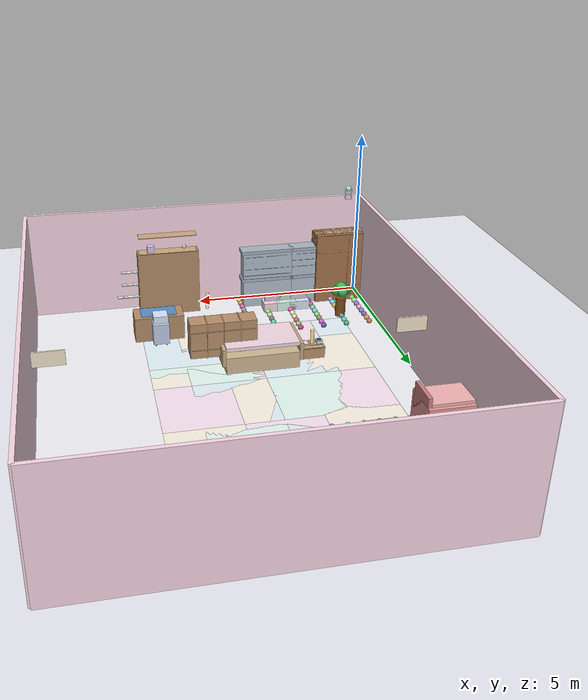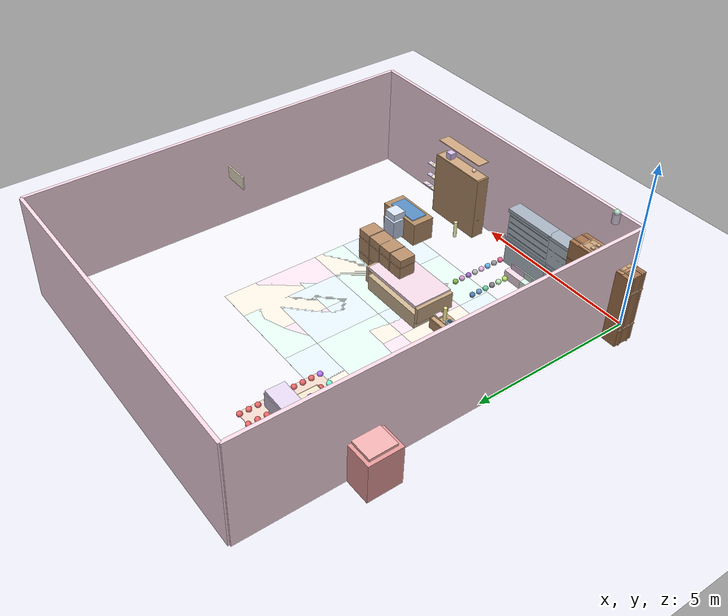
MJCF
<mujoco model="kids_room">
  <compiler angle="degree" inertiafromgeom="true"/>
  <option gravity="0 0 -9.81" integrator="RK4"/>
  <default>
    <default class="floor"><geom friction="1 0.005 0.0001" rgba="0.92 0.92 0.96 1"/></default>
    <default class="wall"><geom type="box" rgba="0.98 0.85 0.9 1"/></default>
    <default class="ceiling"><geom type="box" rgba="0.93 0.93 0.95 1"/></default>
    <default class="furniture"><geom friction="0.8 0.03 0.001" rgba="0.65 0.65 0.68 1"/></default>
    <default class="wood"><geom friction="0.8 0.03 0.001" rgba="0.95 0.9 0.8 1"/></default>
    <default class="metal"><geom friction="0.9 0.02 0.001" rgba="0.55 0.55 0.6 1"/></default>
    <default class="plastic"><geom friction="0.6 0.02 0.001" rgba="0.7 0.7 0.8 1"/></default>
    <default class="toy"><geom type="sphere" size="0.08" friction="0.6 0.01 0.001" rgba="0.9 0.4 0.4 1"/></default>
    <default class="lamp"><geom rgba="1 1 0.75 1"/></default>
    <default class="arm"><geom rgba="0.45 0.48 0.52 1" friction="0.9 0.02 0.001"/></default>
  </default>
  <worldbody>
    <light name="ambient_top" pos="4 5 3.1" dir="0 0 -1" diffuse="0.6 0.6 0.6" specular="0.2 0.2 0.2"/>
    <light name="north_soft" pos="4 1 3.0" dir="0 0 -1" diffuse="0.4 0.4 0.45" specular="0.15 0.15 0.15"/>
    <light name="south_soft" pos="4 9 3.0" dir="0 0 -1" diffuse="0.4 0.4 0.45" specular="0.15 0.15 0.15"/>
    <light name="ceiling_light" pos="4 5 3.5" dir="0 0 -1" diffuse="0.8 0.8 0.8" specular="0.5 0.5 0.5"/>
    <body name="room">
      <geom name="floor_plane" class="floor" type="plane" pos="0 0 0" size="40 40 0.1"/>
      <geom name="floor_visual" class="floor" type="box" pos="5 6 0" size="5 6 0.03" rgba="0.95 0.95 0.97 1"/>
      <!-- Decorative floor pattern -->
      <geom class="floor" type="box" pos="2 3 0.031" size="1 1 0.001" rgba="0.9 0.95 0.98 1"/>
      <geom class="floor" type="box" pos="3 3 0.031" size="1 1 0.001" rgba="0.98 0.9 0.95 1"/>
      <geom class="floor" type="box" pos="4 3 0.031" size="1 1 0.001" rgba="0.9 0.98 0.95 1"/>
      <geom class="floor" type="box" pos="5 3 0.031" size="1 1 0.001" rgba="0.98 0.95 0.9 1"/>
      <geom class="floor" type="box" pos="6 3 0.031" size="1 1 0.001" rgba="0.9 0.95 0.98 1"/>
      <geom class="floor" type="box" pos="2 4 0.031" size="1 1 0.001" rgba="0.98 0.95 0.9 1"/>
      <geom class="floor" type="box" pos="3 4 0.031" size="1 1 0.001" rgba="0.9 0.95 0.98 1"/>
      <geom class="floor" type="box" pos="4 4 0.031" size="1 1 0.001" rgba="0.98 0.9 0.95 1"/>
      <geom class="floor" type="box" pos="5 4 0.031" size="1 1 0.001" rgba="0.9 0.98 0.95 1"/>
      <geom class="floor" type="box" pos="6 4 0.031" size="1 1 0.001" rgba="0.98 0.95 0.9 1"/>
      <geom class="floor" type="box" pos="2 5 0.031" size="1 1 0.001" rgba="0.9 0.98 0.95 1"/>
      <geom class="floor" type="box" pos="3 5 0.031" size="1 1 0.001" rgba="0.98 0.95 0.9 1"/>
      <geom class="floor" type="box" pos="4 5 0.031" size="1 1 0.001" rgba="0.9 0.95 0.98 1"/>
      <geom class="floor" type="box" pos="5 5 0.031" size="1 1 0.001" rgba="0.98 0.9 0.95 1"/>
      <geom class="floor" type="box" pos="6 5 0.031" size="1 1 0.001" rgba="0.9 0.98 0.95 1"/>
      <geom class="floor" type="box" pos="2 6 0.031" size="1 1 0.001" rgba="0.98 0.9 0.95 1"/>
      <geom class="floor" type="box" pos="3 6 0.031" size="1 1 0.001" rgba="0.9 0.98 0.95 1"/>
      <geom class="floor" type="box" pos="4 6 0.031" size="1 1 0.001" rgba="0.98 0.95 0.9 1"/>
      <geom class="floor" type="box" pos="5 6 0.031" size="1 1 0.001" rgba="0.9 0.95 0.98 1"/>
      <geom class="floor" type="box" pos="6 6 0.031" size="1 1 0.001" rgba="0.98 0.9 0.95 1"/>
      <geom class="floor" type="box" pos="2 7 0.031" size="1 1 0.001" rgba="0.98 0.95 0.9 1"/>
      <geom class="floor" type="box" pos="3 7 0.031" size="1 1 0.001" rgba="0.9 0.95 0.98 1"/>
      <geom class="floor" type="box" pos="4 7 0.031" size="1 1 0.001" rgba="0.98 0.9 0.95 1"/>
      <geom class="floor" type="box" pos="5 7 0.031" size="1 1 0.001" rgba="0.9 0.98 0.95 1"/>
      <geom class="floor" type="box" pos="6 7 0.031" size="1 1 0.001" rgba="0.98 0.95 0.9 1"/>
      <geom name="north_wall" class="wall" pos="5 0 1.6" size="5 0.05 1.6" rgba="0.98 0.85 0.9 1"/>
      <geom name="south_wall" class="wall" pos="5 12 1.6" size="5 0.05 1.6" rgba="0.98 0.85 0.9 1"/>
      <geom name="west_wall" class="wall" pos="0 6 1.6" size="0.05 6 1.6" rgba="0.98 0.85 0.9 1"/>
      <geom name="east_wall" class="wall" pos="10 6 1.6" size="0.05 6 1.6" rgba="0.98 0.85 0.9 1"/>
      <!-- Windows -->
      <geom name="north_window" type="box" pos="5 0 2.0" size="1.5 0.02 0.8" rgba="0.3 0.6 0.9 0.6"/>
      <geom name="north_window_frame1" class="metal" type="box" pos="4.25 0 2.0" size="0.02 0.03 0.85"/>
      <geom name="north_window_frame2" class="metal" type="box" pos="5.75 0 2.0" size="0.02 0.03 0.85"/>
      <geom name="north_window_frame3" class="metal" type="box" pos="5 0 1.6" size="1.55 0.03 0.02"/>
      <geom name="north_window_frame4" class="metal" type="box" pos="5 0 2.4" size="1.55 0.03 0.02"/>
      <!-- Wall decorations -->
      <geom name="painting1" type="box" pos="3 0 2.2" size="0.6 0.01 0.4" rgba="0.9 0.7 0.5 1"/>
      <geom name="painting2" type="box" pos="7 0 2.2" size="0.6 0.01 0.4" rgba="0.5 0.7 0.9 1"/>
      <geom name="painting3" type="box" pos="3 12 2.2" size="0.6 0.01 0.4" rgba="0.7 0.9 0.5 1"/>
      <geom name="painting4" type="box" pos="7 12 2.2" size="0.6 0.01 0.4" rgba="0.9 0.5 0.9 1"/>
      <geom name="shelf1" class="wood" type="box" pos="3 12 1.8" size="0.4 0.02 0.2"/>
      <geom name="shelf2" class="wood" type="box" pos="7 12 1.8" size="0.4 0.02 0.2"/>
      <geom name="shelf3" class="wood" type="box" pos="0.5 6 1.8" size="0.4 0.02 0.2"/>
      <geom name="shelf4" class="wood" type="box" pos="9.5 6 1.8" size="0.4 0.02 0.2"/>
    </body>
    <body name="rest_area">
      <geom name="rest_rug" type="box" pos="4 4.5 0.01" size="2 2 0.01" rgba="0.85 0.92 0.98 1"/>
      <geom name="middle_rug" type="box" pos="5 6 0.015" size="2 1.5 0.005" rgba="0.92 0.85 0.98 1"/>
      <geom name="corner_rug" type="box" pos="8 8 0.015" size="1.5 1.5 0.005" rgba="0.85 0.98 0.92 1"/>
      <body name="bed" pos="4 4 0.25" euler="0 0 0">
        <geom class="wood" type="box" size="1 0.6 0.25" rgba="0.82 0.72 0.58 1"/>
        <geom class="wood" type="box" size="0.05 0.6 0.25" pos="1.05 0 0.25" rgba="0.78 0.66 0.52 1"/>
        <geom class="wood" type="box" size="0.05 0.6 0.25" pos="-1.05 0 0.25" rgba="0.78 0.66 0.52 1"/>
        <geom type="box" size="1 0.6 0.05" pos="0 0 0.5" rgba="0.95 0.85 0.9 1"/>
      </body>
      <body name="bedside_cabinet" pos="2.5 4 0.2">
        <geom class="wood" type="box" size="0.3 0.25 0.15" rgba="0.72 0.56 0.42 1"/>
        <!-- Drawers -->
        <geom class="wood" type="box" size="0.28 0.23 0.01" pos="0 0 0.16" rgba="0.8 0.65 0.5 1"/>
        <geom class="wood" type="box" size="0.28 0.1 0.05" pos="0 0 0.07" rgba="0.78 0.63 0.48 1"/>
        <geom class="wood" type="box" size="0.28 0.1 0.05" pos="0 0 0.14" rgba="0.78 0.63 0.48 1"/>
        <geom class="wood" type="box" size="0.28 0.01 0.05" pos="0 0 0.11" rgba="0.85 0.7 0.55 1"/>
        <!-- Drawer handles -->
        <geom class="metal" type="box" size="0.02 0.02 0.01" pos="0.1 0 0.07" rgba="0.6 0.6 0.65 1"/>
        <geom class="metal" type="box" size="0.02 0.02 0.01" pos="0.1 0 0.14" rgba="0.6 0.6 0.65 1"/>
      </body>
      <body name="bed_lamp" pos="2.5 4 0.6">
        <geom class="lamp" type="cylinder" size="0.05 0.2" rgba="1 0.95 0.6 1"/>
      </body>
      <!-- Add small items on bedside cabinet -->
      <body name="alarm_clock" pos="2.3 4 0.4">
        <geom class="plastic" type="box" size="0.08 0.08 0.08" rgba="0.7 0.9 0.95 1"/>
        <geom class="plastic" type="box" size="0.05 0.05 0.01" pos="0 0 0.085" rgba="0.2 0.3 0.4 1"/>
      </body>
      <body name="photo_frame" pos="2.7 4 0.4">
        <geom class="wood" type="box" size="0.1 0.12 0.02" rgba="0.9 0.85 0.7 1"/>
        <geom type="box" size="0.08 0.1 0.01" pos="0 0 0.025" rgba="0.95 0.85 0.9 1"/>
      </body>
      <body name="small_wardrobe" pos="5 4 0.9" euler="0 0 90">
        <geom class="wood" type="box" size="0.25 0.9 0.5" rgba="0.72 0.56 0.42 1"/>
        <!-- Door frames -->
        <geom class="wood" type="box" size="0.26 0.01 0.52" pos="0 0.45 0" rgba="0.85 0.7 0.55 1"/>
        <geom class="wood" type="box" size="0.26 0.01 0.52" pos="0 -0.45 0" rgba="0.85 0.7 0.55 1"/>
        <geom class="wood" type="box" size="0.26 0.9 0.01" pos="0 0 -0.26" rgba="0.85 0.7 0.55 1"/>
        <geom class="wood" type="box" size="0.26 0.9 0.01" pos="0 0 0.26" rgba="0.85 0.7 0.55 1"/>
        <!-- Middle divider -->
        <geom class="wood" type="box" size="0.26 0.01 0.5" pos="0 0 0" rgba="0.85 0.7 0.55 1"/>
        <!-- Doors -->
        <geom class="wood" type="box" size="0.24 0.43 0.23" pos="0 0.22 0" rgba="0.78 0.63 0.48 1"/>
        <geom class="wood" type="box" size="0.24 0.43 0.23" pos="0 -0.22 0" rgba="0.78 0.63 0.48 1"/>
        <!-- Door handles -->
        <geom class="metal" type="box" size="0.02 0.02 0.01" pos="0.12 0.22 0" rgba="0.6 0.6 0.65 1"/>
        <geom class="metal" type="box" size="0.02 0.02 0.01" pos="0.12 -0.22 0" rgba="0.6 0.6 0.65 1"/>
        <!-- Internal shelves -->
        <geom class="wood" type="box" size="0.24 0.01 0.23" pos="0 0.22 0.12" rgba="0.8 0.65 0.5 1"/>
        <geom class="wood" type="box" size="0.24 0.01 0.23" pos="0 -0.22 0.12" rgba="0.8 0.65 0.5 1"/>
      </body>
    </body>
    <body name="storage_area">
      <geom name="storage_floor" type="box" pos="2 1.5 0.01" size="2 1.5 0.01" rgba="0.96 0.94 0.9 1"/>
      <body name="large_wardrobe" pos="0.5 0.5 1.1">
        <geom class="wood" type="box" size="1 0.3 1.1" rgba="0.65 0.45 0.3 1"/>
        <!-- Door frames -->
        <geom class="wood" type="box" size="1.02 0.02 1.12" pos="0 0.15 0" rgba="0.8 0.65 0.5 1"/>
        <geom class="wood" type="box" size="1.02 0.02 1.12" pos="0 -0.15 0" rgba="0.8 0.65 0.5 1"/>
        <geom class="wood" type="box" size="1.02 0.3 0.02" pos="0 0 -0.57" rgba="0.8 0.65 0.5 1"/>
        <geom class="wood" type="box" size="1.02 0.3 0.02" pos="0 0 0.57" rgba="0.8 0.65 0.5 1"/>
        <!-- Middle divider -->
        <geom class="wood" type="box" size="0.02 0.3 1.1" pos="0 0 0" rgba="0.8 0.65 0.5 1"/>
        <!-- Doors -->
        <geom class="wood" type="box" size="0.48 0.28 0.01" pos="-0.25 0 1.1" rgba="0.75 0.55 0.4 1"/>
        <geom class="wood" type="box" size="0.48 0.28 0.01" pos="0.25 0 1.1" rgba="0.75 0.55 0.4 1"/>
        <!-- Door panels -->
        <geom class="wood" type="box" size="0.4 0.12 0.01" pos="-0.25 0.08 1.11" rgba="0.78 0.63 0.48 1"/>
        <geom class="wood" type="box" size="0.4 0.12 0.01" pos="-0.25 -0.08 1.11" rgba="0.78 0.63 0.48 1"/>
        <geom class="wood" type="box" size="0.4 0.12 0.01" pos="0.25 0.08 1.11" rgba="0.78 0.63 0.48 1"/>
        <geom class="wood" type="box" size="0.4 0.12 0.01" pos="0.25 -0.08 1.11" rgba="0.78 0.63 0.48 1"/>
        <!-- Enhanced door handles -->
        <geom class="metal" type="box" size="0.03 0.03 0.08" pos="-0.2 0.0 1.0" rgba="0.7 0.7 0.75 1"/>
        <geom class="metal" type="cylinder" size="0.015 0.1" pos="-0.2 0.0 1.05" rgba="0.7 0.7 0.75 1"/>
        <geom class="metal" type="box" size="0.03 0.03 0.08" pos="0.2 0.0 1.0" rgba="0.7 0.7 0.75 1"/>
        <geom class="metal" type="cylinder" size="0.015 0.1" pos="0.2 0.0 1.05" rgba="0.7 0.7 0.75 1"/>
        <!-- Internal shelves -->
        <geom class="wood" type="box" size="0.96 0.01 0.5" pos="0 0.1 0.25" rgba="0.75 0.6 0.45 1"/>
        <geom class="wood" type="box" size="0.96 0.01 0.5" pos="0 -0.1 0.25" rgba="0.75 0.6 0.45 1"/>
        <geom class="wood" type="box" size="0.96 0.01 0.5" pos="0 0.1 -0.25" rgba="0.75 0.6 0.45 1"/>
        <geom class="wood" type="box" size="0.96 0.01 0.5" pos="0 -0.1 -0.25" rgba="0.75 0.6 0.45 1"/>
        <!-- Decorative trim -->
        <geom class="wood" type="box" size="0.05 0.05 0.05" pos="-0.4 0.1 1.11" rgba="0.85 0.7 0.55 1"/>
        <geom class="wood" type="box" size="0.05 0.05 0.05" pos="-0.4 -0.1 1.11" rgba="0.85 0.7 0.55 1"/>
        <geom class="wood" type="box" size="0.05 0.05 0.05" pos="0.4 0.1 1.11" rgba="0.85 0.7 0.55 1"/>
        <geom class="wood" type="box" size="0.05 0.05 0.05" pos="0.4 -0.1 1.11" rgba="0.85 0.7 0.55 1"/>
        <!-- Add a decorative vase on top of wardrobe -->
        <body name="decorative_vase" pos="0 0 2.3">
          <geom class="plastic" type="cylinder" size="0.1 0.15" rgba="0.9 0.85 0.95 0.8"/>
          <geom type="sphere" size="0.08" pos="0 0 0.15" rgba="0.7 0.9 0.8 1"/>
        </body>
      </body>
      <body name="toy_rack_1" pos="1.5 0.5 0.9">
        <geom class="metal" type="box" size="0.75 0.2 0.9" rgba="0.7 0.75 0.8 1"/>
        <!-- Enhanced frame -->
        <geom class="metal" type="box" size="0.8 0.22 0.05" pos="0 0 0" rgba="0.65 0.7 0.75 1"/>
        <geom class="metal" type="box" size="0.8 0.22 0.05" pos="0 0 0.9" rgba="0.65 0.7 0.75 1"/>
        <!-- Additional shelves -->
        <geom class="plastic" type="box" size="0.7 0.18 0.15" pos="0 0 0.15" rgba="0.8 0.9 0.8 0.8"/>
        <geom class="plastic" type="box" size="0.7 0.18 0.15" pos="0 0 0.35" rgba="0.9 0.8 0.8 0.8"/>
        <geom class="plastic" type="box" size="0.7 0.18 0.15" pos="0 0 0.55" rgba="0.8 0.8 0.9 0.8"/>
        <geom class="plastic" type="box" size="0.7 0.18 0.15" pos="0 0 0.75" rgba="0.9 0.9 0.8 0.8"/>
        <!-- Decorative edges -->
        <geom class="metal" type="box" size="0.72 0.2 0.01" pos="0 0 0.15" rgba="0.6 0.65 0.7 1"/>
        <geom class="metal" type="box" size="0.72 0.2 0.01" pos="0 0 0.35" rgba="0.6 0.65 0.7 1"/>
        <geom class="metal" type="box" size="0.72 0.2 0.01" pos="0 0 0.55" rgba="0.6 0.65 0.7 1"/>
        <geom class="metal" type="box" size="0.72 0.2 0.01" pos="0 0 0.75" rgba="0.6 0.65 0.7 1"/>
        <!-- Decorative corner caps -->
        <geom class="plastic" type="sphere" size="0.03" pos="-0.38 0.11 0" rgba="0.9 0.4 0.4 1"/>
        <geom class="plastic" type="sphere" size="0.03" pos="0.38 0.11 0" rgba="0.9 0.4 0.4 1"/>
        <geom class="plastic" type="sphere" size="0.03" pos="-0.38 -0.11 0" rgba="0.9 0.4 0.4 1"/>
        <geom class="plastic" type="sphere" size="0.03" pos="0.38 -0.11 0" rgba="0.9 0.4 0.4 1"/>
      </body>
      <body name="toy_rack_2" pos="3.0 0.5 0.9">
        <geom class="metal" type="box" size="0.75 0.2 0.9" rgba="0.7 0.75 0.8 1"/>
        <!-- Enhanced frame -->
        <geom class="metal" type="box" size="0.8 0.22 0.05" pos="0 0 0" rgba="0.65 0.7 0.75 1"/>
        <geom class="metal" type="box" size="0.8 0.22 0.05" pos="0 0 0.9" rgba="0.65 0.7 0.75 1"/>
        <!-- Additional shelves -->
        <geom class="plastic" type="box" size="0.7 0.18 0.15" pos="0 0 0.15" rgba="0.8 0.8 0.9 0.8"/>
        <geom class="plastic" type="box" size="0.7 0.18 0.15" pos="0 0 0.35" rgba="0.9 0.9 0.8 0.8"/>
        <geom class="plastic" type="box" size="0.7 0.18 0.15" pos="0 0 0.55" rgba="0.9 0.8 0.9 0.8"/>
        <geom class="plastic" type="box" size="0.7 0.18 0.15" pos="0 0 0.75" rgba="0.8 0.9 0.9 0.8"/>
        <!-- Decorative edges -->
        <geom class="metal" type="box" size="0.72 0.2 0.01" pos="0 0 0.15" rgba="0.6 0.65 0.7 1"/>
        <geom class="metal" type="box" size="0.72 0.2 0.01" pos="0 0 0.35" rgba="0.6 0.65 0.7 1"/>
        <geom class="metal" type="box" size="0.72 0.2 0.01" pos="0 0 0.55" rgba="0.6 0.65 0.7 1"/>
        <geom class="metal" type="box" size="0.72 0.2 0.01" pos="0 0 0.75" rgba="0.6 0.65 0.7 1"/>
        <!-- Decorative corner caps -->
        <geom class="plastic" type="sphere" size="0.03" pos="-0.38 0.11 0" rgba="0.4 0.9 0.4 1"/>
        <geom class="plastic" type="sphere" size="0.03" pos="0.38 0.11 0" rgba="0.4 0.9 0.4 1"/>
        <geom class="plastic" type="sphere" size="0.03" pos="-0.38 -0.11 0" rgba="0.4 0.9 0.4 1"/>
        <geom class="plastic" type="sphere" size="0.03" pos="0.38 -0.11 0" rgba="0.4 0.9 0.4 1"/>
      </body>
      <body name="storage_box_1" pos="2.1 1.0 0.15">
        <geom class="plastic" type="box" size="0.3 0.2 0.15" rgba="0.85 0.9 0.95 1"/>
        <geom type="box" size="0.25 0.01 0.16" pos="0 0 0.16" rgba="0.75 0.8 0.85 1"/>
      </body>
      <body name="storage_box_2" pos="2.5 1.0 0.15">
        <geom class="plastic" type="box" size="0.3 0.2 0.15" rgba="0.85 0.95 0.9 1"/>
        <geom type="box" size="0.25 0.01 0.16" pos="0 0 0.16" rgba="0.75 0.85 0.8 1"/>
      </body>
      <body name="storage_box_3" pos="2.9 1.0 0.15">
        <geom class="plastic" type="box" size="0.3 0.2 0.15" rgba="0.95 0.85 0.9 1"/>
        <geom type="box" size="0.25 0.01 0.16" pos="0 0 0.16" rgba="0.85 0.75 0.85 1"/>
      </body>
      <!-- Add a small plant -->
      <body name="plant" pos="1 1.8 0.3">
        <geom class="plastic" type="cylinder" size="0.15 0.3" rgba="0.5 0.3 0.1 1"/>
        <geom type="sphere" size="0.2" pos="0 0 0.6" rgba="0.2 0.7 0.3 1"/>
        <geom type="sphere" size="0.15" pos="0.15 0 0.55" rgba="0.2 0.7 0.3 1"/>
        <geom type="sphere" size="0.15" pos="-0.15 0 0.55" rgba="0.2 0.7 0.3 1"/>
        <geom type="sphere" size="0.15" pos="0 0.15 0.55" rgba="0.2 0.7 0.3 1"/>
      </body>
      <body name="storage_toys">
        <geom class="toy" name="st_toy_01" pos="0.3 0.3 0.08" rgba="0.95 0.45 0.45 1"/>
        <geom class="toy" name="st_toy_02" pos="1.0 0.3 0.08" rgba="0.95 0.7 0.45 1"/>
        <geom class="toy" name="st_toy_03" pos="1.7 0.3 0.08" rgba="0.45 0.6 0.95 1"/>
        <geom class="toy" name="st_toy_04" pos="2.4 0.3 0.08" rgba="0.45 0.9 0.6 1"/>
        <geom class="toy" name="st_toy_05" pos="3.1 0.3 0.08" rgba="0.85 0.45 0.95 1"/>
        <geom class="toy" name="st_toy_06" pos="3.8 0.3 0.08" rgba="0.95 0.85 0.45 1"/>
        <geom class="toy" name="st_toy_07" pos="0.3 0.54 0.08" rgba="0.4 0.9 0.4 1"/>
        <geom class="toy" name="st_toy_08" pos="1.0 0.54 0.08" rgba="0.4 0.4 0.9 1"/>
        <geom class="toy" name="st_toy_09" pos="1.7 0.54 0.08" rgba="0.9 0.9 0.4 1"/>
        <geom class="toy" name="st_toy_10" pos="2.4 0.54 0.08" rgba="0.9 0.4 0.9 1"/>
        <geom class="toy" name="st_toy_11" pos="3.1 0.54 0.08" rgba="0.4 0.9 0.9 1"/>
        <geom class="toy" name="st_toy_12" pos="3.8 0.54 0.08" rgba="0.9 0.6 0.4 1"/>
        <geom class="toy" name="st_toy_13" pos="0.3 0.78 0.08" rgba="0.6 0.9 0.4 1"/>
        <geom class="toy" name="st_toy_14" pos="1.0 0.78 0.08" rgba="0.9 0.6 0.9 1"/>
        <geom class="toy" name="st_toy_15" pos="1.7 0.78 0.08" rgba="0.6 0.4 0.9 1"/>
        <geom class="toy" name="st_toy_16" pos="2.4 0.78 0.08" rgba="0.9 0.9 0.6 1"/>
        <geom class="toy" name="st_toy_17" pos="3.1 0.78 0.08" rgba="0.4 0.6 0.9 1"/>
        <geom class="toy" name="st_toy_18" pos="3.8 0.78 0.08" rgba="0.9 0.4 0.6 1"/>
        <geom class="toy" name="st_toy_19" pos="0.3 1.02 0.08" rgba="0.6 0.9 0.6 1"/>
        <geom class="toy" name="st_toy_20" pos="1.0 1.02 0.08" rgba="0.4 0.9 0.9 1"/>
        <geom class="toy" name="st_toy_21" pos="1.7 1.02 0.08" rgba="0.9 0.4 0.4 1"/>
        <geom class="toy" name="st_toy_22" pos="2.4 1.02 0.08" rgba="0.4 0.4 0.4 1"/>
        <geom class="toy" name="st_toy_23" pos="3.1 1.02 0.08" rgba="0.9 0.9 0.9 1"/>
        <geom class="toy" name="st_toy_24" pos="3.8 1.02 0.08" rgba="0.6 0.6 0.6 1"/>
        <geom class="toy" name="st_toy_25" pos="0.3 1.26 0.08" rgba="0.7 0.4 0.9 1"/>
        <geom class="toy" name="st_toy_26" pos="1.0 1.26 0.08" rgba="0.9 0.7 0.4 1"/>
        <geom class="toy" name="st_toy_27" pos="1.7 1.26 0.08" rgba="0.4 0.9 0.7 1"/>
        <geom class="toy" name="st_toy_28" pos="2.4 1.26 0.08" rgba="0.9 0.4 0.7 1"/>
        <geom class="toy" name="st_toy_29" pos="3.1 1.26 0.08" rgba="0.7 0.9 0.4 1"/>
        <geom class="toy" name="st_toy_30" pos="3.8 1.26 0.08" rgba="0.4 0.7 0.9 1"/>
        <geom class="toy" name="st_toy_31" pos="0.3 1.5 0.08" rgba="0.9 0.7 0.7 1"/>
        <geom class="toy" name="st_toy_32" pos="1.0 1.5 0.08" rgba="0.7 0.9 0.9 1"/>
        <geom class="toy" name="st_toy_33" pos="1.7 1.5 0.08" rgba="0.7 0.7 0.9 1"/>
        <geom class="toy" name="st_toy_34" pos="2.4 1.5 0.08" rgba="0.9 0.9 0.7 1"/>
        <geom class="toy" name="st_toy_35" pos="3.1 1.5 0.08" rgba="0.7 0.9 0.7 1"/>
        <geom class="toy" name="st_toy_36" pos="3.8 1.5 0.08" rgba="0.9 0.7 0.9 1"/>
        <geom class="toy" name="st_toy_37" pos="0.3 1.74 0.08" rgba="0.5 0.5 0.9 1"/>
        <geom class="toy" name="st_toy_38" pos="1.0 1.74 0.08" rgba="0.9 0.5 0.5 1"/>
        <geom class="toy" name="st_toy_39" pos="1.7 1.74 0.08" rgba="0.5 0.9 0.5 1"/>
        <geom class="toy" name="st_toy_40" pos="2.4 1.74 0.08" rgba="0.9 0.9 0.5 1"/>
        <geom class="toy" name="st_toy_41" pos="3.1 1.74 0.08" rgba="0.5 0.5 0.5 1"/>
        <geom class="toy" name="st_toy_42" pos="3.8 1.74 0.08" rgba="0.7 0.7 0.7 1"/>
        <geom class="toy" name="st_toy_43" pos="0.3 1.98 0.08" rgba="0.6 0.4 0.6 1"/>
        <geom class="toy" name="st_toy_44" pos="1.0 1.98 0.08" rgba="0.4 0.6 0.6 1"/>
        <geom class="toy" name="st_toy_45" pos="1.7 1.98 0.08" rgba="0.6 0.6 0.4 1"/>
        <geom class="toy" name="st_toy_46" pos="2.4 1.98 0.08" rgba="0.8 0.4 0.6 1"/>
        <geom class="toy" name="st_toy_47" pos="3.1 1.98 0.08" rgba="0.4 0.8 0.6 1"/>
        <geom class="toy" name="st_toy_48" pos="3.8 1.98 0.08" rgba="0.6 0.4 0.8 1"/>
        <geom class="toy" name="st_toy_49" pos="0.3 2.22 0.08" rgba="0.8 0.6 0.4 1"/>
        <geom class="toy" name="st_toy_50" pos="1.0 2.22 0.08" rgba="0.4 0.8 0.8 1"/>
        <geom class="toy" name="st_toy_51" pos="1.7 2.22 0.08" rgba="0.8 0.4 0.8 1"/>
        <geom class="toy" name="st_toy_52" pos="2.4 2.22 0.08" rgba="0.6 0.8 0.4 1"/>
        <geom class="toy" name="st_toy_53" pos="3.1 2.22 0.08" rgba="0.4 0.6 0.8 1"/>
        <geom class="toy" name="st_toy_54" pos="3.8 2.22 0.08" rgba="0.8 0.6 0.8 1"/>
        <geom class="toy" name="st_toy_55" pos="0.3 2.46 0.08" rgba="0.7 0.5 0.3 1"/>
        <geom class="toy" name="st_toy_56" pos="1.0 2.46 0.08" rgba="0.3 0.7 0.5 1"/>
        <geom class="toy" name="st_toy_57" pos="1.7 2.46 0.08" rgba="0.5 0.3 0.7 1"/>
        <geom class="toy" name="st_toy_58" pos="2.4 2.46 0.08" rgba="0.7 0.3 0.5 1"/>
        <geom class="toy" name="st_toy_59" pos="3.1 2.46 0.08" rgba="0.3 0.5 0.7 1"/>
        <geom class="toy" name="st_toy_60" pos="3.8 2.46 0.08" rgba="0.5 0.7 0.3 1"/>
      </body>
    </body>
    <body name="study_area">
      <geom name="study_floor" type="box" pos="6 2 0.01" size="2 2 0.01" rgba="0.9 0.96 0.9 1"/>
      <body name="desk" pos="6.5 2 0.375" euler="0 0 0">
        <geom class="wood" type="box" size="0.7 0.35 0.375" rgba="0.7 0.55 0.4 1"/>
        <geom class="plastic" type="box" size="0.5 0.25 0.02" pos="0 0 0.395" rgba="0.3 0.6 0.9 0.8"/>
        <geom class="plastic" type="cylinder" size="0.03 0.1" pos="-0.3 0 -0.375" rgba="0.5 0.5 0.5 1"/>
        <geom class="plastic" type="cylinder" size="0.03 0.1" pos="0.3 0 -0.375" rgba="0.5 0.5 0.5 1"/>
      </body>
      <body name="chair" pos="6.5 2.5 0.4">
        <geom class="plastic" type="box" size="0.225 0.225 0.3" rgba="0.75 0.8 0.9 1"/>
        <geom class="plastic" type="box" size="0.2 0.2 0.1" pos="0 0 0.45" rgba="0.85 0.9 1 1"/>
        <geom class="plastic" type="cylinder" size="0.02 0.05" pos="0.15 0.15 -0.35" rgba="0.5 0.5 0.5 1"/>
        <geom class="plastic" type="cylinder" size="0.02 0.05" pos="-0.15 0.15 -0.35" rgba="0.5 0.5 0.5 1"/>
        <geom class="plastic" type="cylinder" size="0.02 0.05" pos="0.15 -0.15 -0.35" rgba="0.5 0.5 0.5 1"/>
        <geom class="plastic" type="cylinder" size="0.02 0.05" pos="-0.15 -0.15 -0.35" rgba="0.5 0.5 0.5 1"/>
      </body>
      <body name="bookshelf" pos="6 0.5 1.0">
        <geom class="wood" type="box" size="0.9 0.2 1.0" rgba="0.7 0.55 0.4 1"/>
        <!-- Bookshelf shelves -->
        <geom class="wood" type="box" size="0.85 0.18 0.01" pos="0 0 0.5" rgba="0.8 0.65 0.5 1"/>
        <geom class="wood" type="box" size="0.85 0.18 0.01" pos="0 0 1.0" rgba="0.8 0.65 0.5 1"/>
        <geom class="wood" type="box" size="0.85 0.18 0.01" pos="0 0 1.5" rgba="0.8 0.65 0.5 1"/>
      </body>
      <body name="bookshelf_books">
        <geom class="plastic" type="box" size="0.1 0.075 0.01" pos="5.2 0.5 0.6" rgba="0.9 0.8 0.7 1"/>
        <geom class="plastic" type="box" size="0.1 0.075 0.01" pos="5.35 0.5 0.6" rgba="0.85 0.9 0.75 1"/>
        <geom class="plastic" type="box" size="0.1 0.075 0.01" pos="5.5 0.5 0.6" rgba="0.8 0.85 0.95 1"/>
        <geom class="plastic" type="box" size="0.1 0.075 0.01" pos="5.65 0.5 0.6" rgba="0.95 0.85 0.8 1"/>
        <geom class="plastic" type="box" size="0.1 0.075 0.01" pos="5.8 0.5 0.6" rgba="0.75 0.9 0.85 1"/>
        <geom class="plastic" type="box" size="0.1 0.075 0.01" pos="5.95 0.5 0.6" rgba="0.9 0.75 0.85 1"/>
        <geom class="plastic" type="box" size="0.1 0.075 0.01" pos="6.1 0.5 0.6" rgba="0.85 0.8 0.95 1"/>
        <geom class="plastic" type="box" size="0.1 0.075 0.01" pos="6.25 0.5 0.6" rgba="0.9 0.85 0.75 1"/>
        <geom class="plastic" type="box" size="0.1 0.075 0.01" pos="6.4 0.5 0.6" rgba="0.8 0.95 0.85 1"/>
        <geom class="plastic" type="box" size="0.1 0.075 0.01" pos="6.55 0.5 0.6" rgba="0.75 0.85 0.95 1"/>
        <geom class="plastic" type="box" size="0.1 0.075 0.01" pos="6.7 0.5 0.6" rgba="0.95 0.8 0.85 1"/>
        <geom class="plastic" type="box" size="0.1 0.075 0.01" pos="6.85 0.5 0.6" rgba="0.85 0.95 0.8 1"/>
        <geom class="plastic" type="box" size="0.1 0.075 0.01" pos="7.0 0.5 0.6" rgba="0.8 0.9 0.95 1"/>
        <geom class="plastic" type="box" size="0.1 0.075 0.01" pos="7.15 0.5 0.6" rgba="0.95 0.9 0.8 1"/>
        <geom class="plastic" type="box" size="0.1 0.075 0.01" pos="7.3 0.5 0.6" rgba="0.85 0.8 0.9 1"/>
        <geom class="plastic" type="box" size="0.1 0.075 0.01" pos="7.45 0.5 0.6" rgba="0.9 0.85 0.9 1"/>
        <geom class="plastic" type="box" size="0.1 0.075 0.01" pos="5.2 0.5 1.0" rgba="0.9 0.8 0.7 1"/>
        <geom class="plastic" type="box" size="0.1 0.075 0.01" pos="5.35 0.5 1.0" rgba="0.85 0.9 0.75 1"/>
        <geom class="plastic" type="box" size="0.1 0.075 0.01" pos="5.5 0.5 1.0" rgba="0.8 0.85 0.95 1"/>
        <geom class="plastic" type="box" size="0.1 0.075 0.01" pos="5.65 0.5 1.0" rgba="0.95 0.85 0.8 1"/>
        <geom class="plastic" type="box" size="0.1 0.075 0.01" pos="5.8 0.5 1.0" rgba="0.75 0.9 0.85 1"/>
        <geom class="plastic" type="box" size="0.1 0.075 0.01" pos="5.95 0.5 1.0" rgba="0.9 0.75 0.85 1"/>
        <geom class="plastic" type="box" size="0.1 0.075 0.01" pos="6.1 0.5 1.0" rgba="0.85 0.8 0.95 1"/>
        <geom class="plastic" type="box" size="0.1 0.075 0.01" pos="6.25 0.5 1.0" rgba="0.9 0.85 0.75 1"/>
        <geom class="plastic" type="box" size="0.1 0.075 0.01" pos="6.4 0.5 1.0" rgba="0.8 0.95 0.85 1"/>
        <geom class="plastic" type="box" size="0.1 0.075 0.01" pos="6.55 0.5 1.0" rgba="0.75 0.85 0.95 1"/>
        <geom class="plastic" type="box" size="0.1 0.075 0.01" pos="6.7 0.5 1.0" rgba="0.95 0.8 0.85 1"/>
        <geom class="plastic" type="box" size="0.1 0.075 0.01" pos="6.85 0.5 1.0" rgba="0.85 0.95 0.8 1"/>
        <geom class="plastic" type="box" size="0.1 0.075 0.01" pos="7.0 0.5 1.0" rgba="0.8 0.9 0.95 1"/>
        <geom class="plastic" type="box" size="0.1 0.075 0.01" pos="7.15 0.5 1.0" rgba="0.95 0.9 0.8 1"/>
        <geom class="plastic" type="box" size="0.1 0.075 0.01" pos="7.3 0.5 1.0" rgba="0.85 0.8 0.9 1"/>
        <geom class="plastic" type="box" size="0.1 0.075 0.01" pos="5.2 0.5 1.4" rgba="0.9 0.8 0.7 1"/>
        <geom class="plastic" type="box" size="0.1 0.075 0.01" pos="5.35 0.5 1.4" rgba="0.85 0.9 0.75 1"/>
        <geom class="plastic" type="box" size="0.1 0.075 0.01" pos="5.5 0.5 1.4" rgba="0.8 0.85 0.95 1"/>
        <geom class="plastic" type="box" size="0.1 0.075 0.01" pos="5.65 0.5 1.4" rgba="0.95 0.85 0.8 1"/>
        <geom class="plastic" type="box" size="0.1 0.075 0.01" pos="5.8 0.5 1.4" rgba="0.75 0.9 0.85 1"/>
        <geom class="plastic" type="box" size="0.1 0.075 0.01" pos="5.95 0.5 1.4" rgba="0.9 0.75 0.85 1"/>
        <geom class="plastic" type="box" size="0.1 0.075 0.01" pos="6.1 0.5 1.4" rgba="0.85 0.8 0.95 1"/>
        <geom class="plastic" type="box" size="0.1 0.075 0.01" pos="6.25 0.5 1.4" rgba="0.9 0.85 0.75 1"/>
        <geom class="plastic" type="box" size="0.1 0.075 0.01" pos="6.4 0.5 1.4" rgba="0.8 0.95 0.85 1"/>
        <geom class="plastic" type="box" size="0.1 0.075 0.01" pos="6.55 0.5 1.4" rgba="0.75 0.85 0.95 1"/>
        <geom class="plastic" type="box" size="0.1 0.075 0.01" pos="6.7 0.5 1.4" rgba="0.95 0.8 0.85 1"/>
        <geom class="plastic" type="box" size="0.1 0.075 0.01" pos="6.85 0.5 1.4" rgba="0.85 0.95 0.8 1"/>
        <geom class="plastic" type="box" size="0.1 0.075 0.01" pos="7.0 0.5 1.4" rgba="0.8 0.9 0.95 1"/>
        <geom class="plastic" type="box" size="0.1 0.075 0.01" pos="7.15 0.5 1.4" rgba="0.95 0.9 0.8 1"/>
        <geom class="plastic" type="box" size="0.1 0.075 0.01" pos="7.3 0.5 1.4" rgba="0.85 0.8 0.9 1"/>
      </body>
      <body name="desk_lamp" pos="5 1.5 0.75">
        <geom class="lamp" type="cylinder" size="0.05 0.25"/>
      </body>
      <!-- Add decorative items on bookshelf -->
      <body name="bookshelf_decor1" pos="6.5 0.5 2.1">
        <geom class="plastic" type="box" size="0.1 0.1 0.1" rgba="0.85 0.75 0.95 1"/>
      </body>
      <body name="bookshelf_decor2" pos="5.5 0.5 2.1">
        <geom class="plastic" type="sphere" size="0.06" rgba="0.9 0.8 0.7 1"/>
      </body>
    </body>
    <body name="play_area">
      <geom name="play_floor" type="box" pos="1.6 8.75 0.01" size="1.6 1.25 0.01" rgba="0.98 0.93 0.9 1"/>
      <body name="play_mat" pos="1.6 8.75 0.025">
        <geom type="box" size="1.5 1.2 0.025" rgba="0.95 0.85 0.8 1"/>
      </body>
      <body name="slide_base" pos="0.2 8.5 0.6">
        <geom class="plastic" type="box" size="1 0.5 0.6" rgba="0.9 0.6 0.6 1"/>
        <geom class="plastic" type="box" size="0.9 0.4 0.05" pos="0 0 0.625" rgba="0.95 0.7 0.7 1"/>
        <geom class="plastic" type="box" size="0.05 0.4 0.55" pos="0.95 0 0.3" rgba="0.8 0.5 0.5 1"/>
      </body>
      <body name="blocks_table" pos="2 8.5 0.25">
        <geom class="wood" type="box" size="0.4 0.4 0.25" rgba="0.7 0.55 0.4 1"/>
        <geom class="plastic" type="box" size="0.35 0.35 0.02" pos="0 0 0.27" rgba="0.95 0.9 0.8 1"/>
        <!-- Add some blocks -->
        <geom class="plastic" type="box" size="0.06 0.06 0.06" pos="-0.1 0 0.3" rgba="0.9 0.4 0.4 1"/>
        <geom class="plastic" type="box" size="0.06 0.06 0.06" pos="0 0 0.3" rgba="0.4 0.9 0.4 1"/>
        <geom class="plastic" type="box" size="0.06 0.06 0.06" pos="0.1 0 0.3" rgba="0.4 0.4 0.9 1"/>
        <geom class="plastic" type="box" size="0.06 0.06 0.06" pos="0 0 0.36" rgba="0.9 0.9 0.4 1"/>
      </body>
      <body name="kids_sofa" pos="2.5 9 0.25">
        <geom class="plastic" type="box" size="0.4 0.3 0.25" rgba="0.8 0.75 0.85 1"/>
        <geom class="plastic" type="box" size="0.38 0.28 0.05" pos="0 0 0.275" rgba="0.9 0.85 0.95 1"/>
      </body>
      <body name="play_toys">
        <geom class="toy" name="pl_toy_01" pos="0.2 7.6 0.08" rgba="0.95 0.45 0.45 1"/>
        <geom class="toy" name="pl_toy_02" pos="0.6 7.6 0.08" rgba="0.45 0.6 0.95 1"/>
        <geom class="toy" name="pl_toy_03" pos="1.0 7.6 0.08" rgba="0.95 0.7 0.45 1"/>
        <geom class="toy" name="pl_toy_04" pos="1.4 7.6 0.08" rgba="0.45 0.9 0.6 1"/>
        <geom class="toy" name="pl_toy_05" pos="1.8 7.6 0.08" rgba="0.85 0.45 0.95 1"/>
        <geom class="toy" name="pl_toy_06" pos="2.2 7.6 0.08" rgba="0.95 0.85 0.45 1"/>
        <geom class="toy" name="pl_toy_07" pos="2.6 7.6 0.08" rgba="0.45 0.95 0.8 1"/>
        <geom class="toy" name="pl_toy_08" pos="3.0 7.6 0.08" rgba="0.7 0.45 0.95 1"/>
        <geom class="toy" name="pl_toy_09" pos="0.2 7.86 0.08"/>
        <geom class="toy" name="pl_toy_10" pos="0.6 7.86 0.08"/>
        <geom class="toy" name="pl_toy_11" pos="1.0 7.86 0.08"/>
        <geom class="toy" name="pl_toy_12" pos="1.4 7.86 0.08"/>
        <geom class="toy" name="pl_toy_13" pos="1.8 7.86 0.08"/>
        <geom class="toy" name="pl_toy_14" pos="2.2 7.86 0.08"/>
        <geom class="toy" name="pl_toy_15" pos="2.6 7.86 0.08"/>
        <geom class="toy" name="pl_toy_16" pos="3.0 7.86 0.08"/>
        <geom class="toy" name="pl_toy_17" pos="0.2 8.12 0.08"/>
        <geom class="toy" name="pl_toy_18" pos="0.6 8.12 0.08"/>
        <geom class="toy" name="pl_toy_19" pos="1.0 8.12 0.08"/>
        <geom class="toy" name="pl_toy_20" pos="1.4 8.12 0.08"/>
        <geom class="toy" name="pl_toy_21" pos="1.8 8.12 0.08"/>
        <geom class="toy" name="pl_toy_22" pos="2.2 8.12 0.08"/>
        <geom class="toy" name="pl_toy_23" pos="2.6 8.12 0.08"/>
        <geom class="toy" name="pl_toy_24" pos="3.0 8.12 0.08"/>
        <geom class="toy" name="pl_toy_25" pos="0.2 8.38 0.08"/>
        <geom class="toy" name="pl_toy_26" pos="0.6 8.38 0.08"/>
        <geom class="toy" name="pl_toy_27" pos="1.0 8.38 0.08"/>
        <geom class="toy" name="pl_toy_28" pos="1.4 8.38 0.08"/>
        <geom class="toy" name="pl_toy_29" pos="1.8 8.38 0.08"/>
        <geom class="toy" name="pl_toy_30" pos="2.2 8.38 0.08"/>
        <geom class="toy" name="pl_toy_31" pos="2.6 8.38 0.08"/>
        <geom class="toy" name="pl_toy_32" pos="3.0 8.38 0.08"/>
        <geom class="toy" name="pl_toy_33" pos="0.2 8.64 0.08"/>
        <geom class="toy" name="pl_toy_34" pos="0.6 8.64 0.08"/>
        <geom class="toy" name="pl_toy_35" pos="1.0 8.64 0.08"/>
        <geom class="toy" name="pl_toy_36" pos="1.4 8.64 0.08"/>
        <geom class="toy" name="pl_toy_37" pos="1.8 8.64 0.08"/>
        <geom class="toy" name="pl_toy_38" pos="2.2 8.64 0.08"/>
        <geom class="toy" name="pl_toy_39" pos="2.6 8.64 0.08"/>
        <geom class="toy" name="pl_toy_40" pos="3.0 8.64 0.08"/>
        <geom class="toy" name="pl_toy_41" pos="0.2 8.9 0.08"/>
        <geom class="toy" name="pl_toy_42" pos="0.6 8.9 0.08"/>
        <geom class="toy" name="pl_toy_43" pos="1.0 8.9 0.08"/>
        <geom class="toy" name="pl_toy_44" pos="1.4 8.9 0.08"/>
        <geom class="toy" name="pl_toy_45" pos="1.8 8.9 0.08"/>
        <geom class="toy" name="pl_toy_46" pos="2.2 8.9 0.08"/>
        <geom class="toy" name="pl_toy_47" pos="2.6 8.9 0.08"/>
        <geom class="toy" name="pl_toy_48" pos="3.0 8.9 0.08"/>
        <geom class="toy" name="pl_toy_49" pos="0.2 9.16 0.08"/>
        <geom class="toy" name="pl_toy_50" pos="0.6 9.16 0.08"/>
        <geom class="toy" name="pl_toy_51" pos="1.0 9.16 0.08"/>
        <geom class="toy" name="pl_toy_52" pos="1.4 9.16 0.08"/>
        <geom class="toy" name="pl_toy_53" pos="1.8 9.16 0.08"/>
        <geom class="toy" name="pl_toy_54" pos="2.2 9.16 0.08"/>
        <geom class="toy" name="pl_toy_55" pos="2.6 9.16 0.08"/>
        <geom class="toy" name="pl_toy_56" pos="3.0 9.16 0.08"/>
        <geom class="toy" name="pl_toy_57" pos="0.2 9.42 0.08"/>
        <geom class="toy" name="pl_toy_58" pos="0.6 9.42 0.08"/>
        <geom class="toy" name="pl_toy_59" pos="1.0 9.42 0.08"/>
        <geom class="toy" name="pl_toy_60" pos="1.4 9.42 0.08"/>
        <geom class="toy" name="pl_toy_61" pos="1.8 9.42 0.08"/>
        <geom class="toy" name="pl_toy_62" pos="2.2 9.42 0.08"/>
        <geom class="toy" name="pl_toy_63" pos="2.6 9.42 0.08"/>
        <geom class="toy" name="pl_toy_64" pos="3.0 9.42 0.08"/>
        <geom class="toy" name="pl_toy_65" pos="0.2 9.68 0.08"/>
        <geom class="toy" name="pl_toy_66" pos="0.6 9.68 0.08"/>
        <geom class="toy" name="pl_toy_67" pos="1.0 9.68 0.08"/>
        <geom class="toy" name="pl_toy_68" pos="1.4 9.68 0.08"/>
        <geom class="toy" name="pl_toy_69" pos="1.8 9.68 0.08"/>
        <geom class="toy" name="pl_toy_70" pos="2.2 9.68 0.08"/>
        <geom class="toy" name="pl_toy_71" pos="2.6 9.68 0.08"/>
        <geom class="toy" name="pl_toy_72" pos="3.0 9.68 0.08"/>
        <geom class="toy" name="pl_toy_73" pos="0.2 9.94 0.08"/>
        <geom class="toy" name="pl_toy_74" pos="0.6 9.94 0.08"/>
        <geom class="toy" name="pl_toy_75" pos="1.0 9.94 0.08"/>
        <geom class="toy" name="pl_toy_76" pos="1.4 9.94 0.08"/>
        <geom class="toy" name="pl_toy_77" pos="1.8 9.94 0.08"/>
        <geom class="toy" name="pl_toy_78" pos="2.2 9.94 0.08"/>
        <geom class="toy" name="pl_toy_79" pos="2.6 9.94 0.08"/>
        <geom class="toy" name="pl_toy_80" pos="3.0 9.94 0.08"/>
      </body>
    </body>
  </worldbody>
  <actuator>
  </actuator>
</mujoco>
